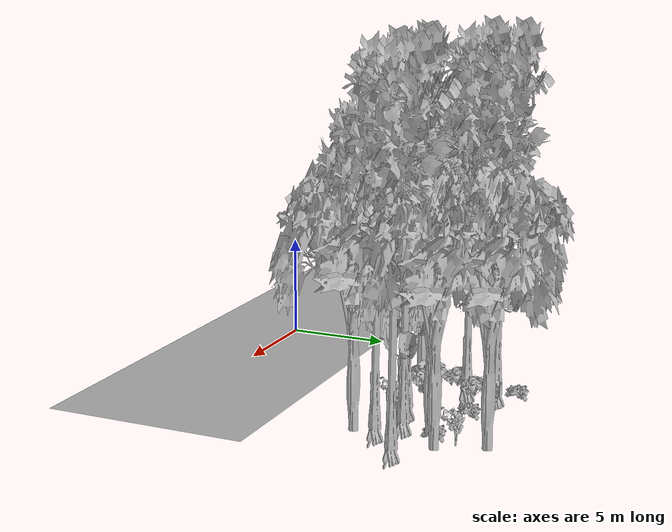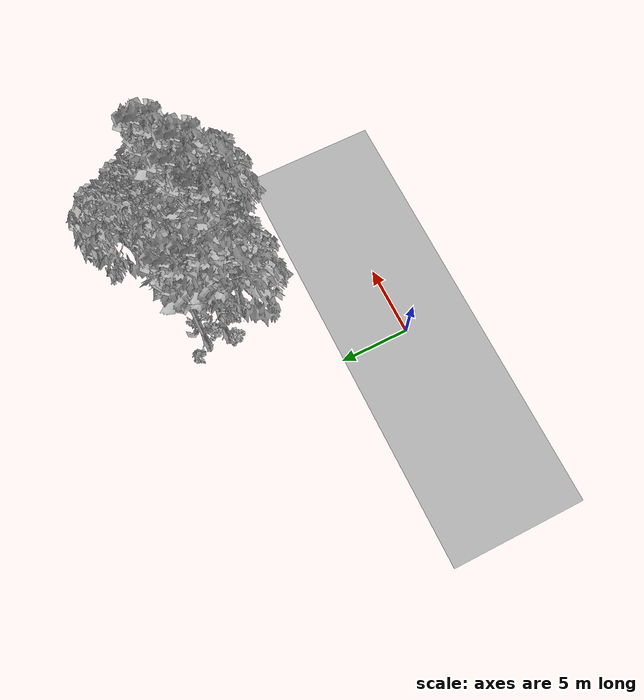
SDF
<sdf version="1.7">
 <world name="default">
  <model name="ground_plane">
   <static>1</static>
   <link name="link">
    <collision name="collision">
     <geometry><plane><normal>0 0 1</normal><size>100 100</size></plane></geometry>
     <surface><contact><ode><min_depth>0.01</min_depth><max_vel>0</max_vel></ode></contact></surface>
    </collision>
    <visual name="grass">
     <cast_shadows>0</cast_shadows>
     <geometry>
      <mesh>
       <scale>0.5814285714285714 0.18142857142857144 0.1</scale>
       <uri>file://grass_plane/meshes/grass_plane.dae</uri>
      </mesh>
     </geometry>
    </visual>
   </link>
  </model>
  <model name="Tree 8">
   <static>1</static>
   <pose>12.07316993260789 14.701660111387213 0 1.57079 -0 0</pose>
   <link name="link">
    <collision name="collision">
     <geometry><mesh><scale>3.5 5 3.5</scale><uri>model://tree_2/meshes/tree_2.obj</uri></mesh></geometry>
    </collision>
    <visual name="visual">
     <geometry><mesh><scale>3.5 5 3.5</scale><uri>model://tree_2/meshes/tree_2.obj</uri></mesh></geometry>
    </visual>
   </link>
  </model>
  <model name="Tree 24">
   <static>1</static>
   <pose>13.769064638838955 11.019449261312328 0 1.57079 -0 0</pose>
   <link name="link">
    <collision name="collision">
     <geometry><mesh><scale>3.5 5 3.5</scale><uri>model://tree_9/meshes/tree_9.obj</uri></mesh></geometry>
    </collision>
    <visual name="visual">
     <geometry><mesh><scale>3.5 5 3.5</scale><uri>model://tree_9/meshes/tree_9.obj</uri></mesh></geometry>
    </visual>
   </link>
  </model>
  <model name="Tree 78">
   <static>1</static>
   <pose>11.82530700708476 9.479976809722505 0 1.57079 -0 0</pose>
   <link name="link">
    <collision name="collision">
     <geometry><mesh><scale>3.5 5 3.5</scale><uri>model://tree_9/meshes/tree_9.obj</uri></mesh></geometry>
    </collision>
    <visual name="visual">
     <geometry><mesh><scale>3.5 5 3.5</scale><uri>model://tree_9/meshes/tree_9.obj</uri></mesh></geometry>
    </visual>
   </link>
  </model>
  <model name="Tree 181">
   <static>1</static>
   <pose>9.187643429530972 9.722921280876772 0 1.57079 -0 0</pose>
   <link name="link">
    <collision name="collision">
     <geometry><mesh><scale>3.5 5 3.5</scale><uri>model://tree_9/meshes/tree_9.obj</uri></mesh></geometry>
    </collision>
    <visual name="visual">
     <geometry><mesh><scale>3.5 5 3.5</scale><uri>model://tree_9/meshes/tree_9.obj</uri></mesh></geometry>
    </visual>
   </link>
  </model>
  <model name="Tree 211">
   <static>1</static>
   <pose>8.75540026182125 9.78323180119623 0 1.57079 -0 0</pose>
   <link name="link">
    <collision name="collision">
     <geometry><mesh><scale>3.5 5 3.5</scale><uri>model://tree_9/meshes/tree_9.obj</uri></mesh></geometry>
    </collision>
    <visual name="visual">
     <geometry><mesh><scale>3.5 5 3.5</scale><uri>model://tree_9/meshes/tree_9.obj</uri></mesh></geometry>
    </visual>
   </link>
  </model>
  <model name="Tree 242">
   <static>1</static>
   <pose>10.565771219315032 10.314334695126519 0 1.57079 -0 0</pose>
   <link name="link">
    <collision name="collision">
     <geometry><mesh><scale>3.5 5 3.5</scale><uri>model://tree_9/meshes/tree_9.obj</uri></mesh></geometry>
    </collision>
    <visual name="visual">
     <geometry><mesh><scale>3.5 5 3.5</scale><uri>model://tree_9/meshes/tree_9.obj</uri></mesh></geometry>
    </visual>
   </link>
  </model>
  <model name="Tree 262">
   <static>1</static>
   <pose>12.344941844912 8.703703186947735 0 1.57079 -0 0</pose>
   <link name="link">
    <collision name="collision">
     <geometry><mesh><scale>3.5 5 3.5</scale><uri>model://tree_2/meshes/tree_2.obj</uri></mesh></geometry>
    </collision>
    <visual name="visual">
     <geometry><mesh><scale>3.5 5 3.5</scale><uri>model://tree_2/meshes/tree_2.obj</uri></mesh></geometry>
    </visual>
   </link>
  </model>
  <model name="Tree 383">
   <static>1</static>
   <pose>6.305407458106657 9.669720391276591 0 1.57079 -0 0</pose>
   <link name="link">
    <collision name="collision">
     <geometry><mesh><scale>3.5 5 3.5</scale><uri>model://tree_2/meshes/tree_2.obj</uri></mesh></geometry>
    </collision>
    <visual name="visual">
     <geometry><mesh><scale>3.5 5 3.5</scale><uri>model://tree_2/meshes/tree_2.obj</uri></mesh></geometry>
    </visual>
   </link>
  </model>
  <model name="Tree 387">
   <static>1</static>
   <pose>12.965246348167248 12.648405683649976 0 1.57079 -0 0</pose>
   <link name="link">
    <collision name="collision">
     <geometry><mesh><scale>3.5 5 3.5</scale><uri>model://tree_2/meshes/tree_2.obj</uri></mesh></geometry>
    </collision>
    <visual name="visual">
     <geometry><mesh><scale>3.5 5 3.5</scale><uri>model://tree_2/meshes/tree_2.obj</uri></mesh></geometry>
    </visual>
   </link>
  </model>
  <model name="Tree 401">
   <static>1</static>
   <pose>5.310335073579665 12.920061202084014 0 1.57079 -0 0</pose>
   <link name="link">
    <collision name="collision">
     <geometry><mesh><scale>3.5 5 3.5</scale><uri>model://tree_9/meshes/tree_9.obj</uri></mesh></geometry>
    </collision>
    <visual name="visual">
     <geometry><mesh><scale>3.5 5 3.5</scale><uri>model://tree_9/meshes/tree_9.obj</uri></mesh></geometry>
    </visual>
   </link>
  </model>
  <model name="Tree 409">
   <static>1</static>
   <pose>11.504295103351424 11.936262495851231 0 1.57079 -0 0</pose>
   <link name="link">
    <collision name="collision">
     <geometry><mesh><scale>3.5 5 3.5</scale><uri>model://tree_2/meshes/tree_2.obj</uri></mesh></geometry>
    </collision>
    <visual name="visual">
     <geometry><mesh><scale>3.5 5 3.5</scale><uri>model://tree_2/meshes/tree_2.obj</uri></mesh></geometry>
    </visual>
   </link>
  </model>
  <model name="Tree 436">
   <static>1</static>
   <pose>5.240879766313746 11.445188822906658 0 1.57079 -0 0</pose>
   <link name="link">
    <collision name="collision">
     <geometry><mesh><scale>3.5 5 3.5</scale><uri>model://tree_9/meshes/tree_9.obj</uri></mesh></geometry>
    </collision>
    <visual name="visual">
     <geometry><mesh><scale>3.5 5 3.5</scale><uri>model://tree_9/meshes/tree_9.obj</uri></mesh></geometry>
    </visual>
   </link>
  </model>
  <model name="Bush 56">
   <static>1</static>
   <pose>6.866988326575722 13.094654866556471 0 1.57079 -0 0</pose>
   <link name="link">
    <collision name="collision">
     <geometry><mesh><scale>2 2 2</scale><uri>model://bush_4/meshes/bush_4.obj</uri></mesh></geometry>
     <surface><contact><collide_without_contact>false</collide_without_contact></contact></surface>
    </collision>
    <visual name="visual">
     <geometry><mesh><scale>2 2 2</scale><uri>model://bush_4/meshes/bush_4.obj</uri></mesh></geometry>
    </visual>
   </link>
  </model>
  <model name="Bush 62">
   <static>1</static>
   <pose>11.28751649200138 12.044852530638043 0 1.57079 -0 0</pose>
   <link name="link">
    <collision name="collision">
     <geometry><mesh><scale>2 2 2</scale><uri>model://bush_2/meshes/bush_2.obj</uri></mesh></geometry>
     <surface><contact><collide_without_contact>false</collide_without_contact></contact></surface>
    </collision>
    <visual name="visual">
     <geometry><mesh><scale>2 2 2</scale><uri>model://bush_2/meshes/bush_2.obj</uri></mesh></geometry>
    </visual>
   </link>
  </model>
  <model name="Bush 95">
   <static>1</static>
   <pose>6.4202256038760765 9.877119476552728 0 1.57079 -0 0</pose>
   <link name="link">
    <collision name="collision">
     <geometry><mesh><scale>2 2 2</scale><uri>model://bush_1/meshes/bush_1.obj</uri></mesh></geometry>
     <surface><contact><collide_without_contact>false</collide_without_contact></contact></surface>
    </collision>
    <visual name="visual">
     <geometry><mesh><scale>2 2 2</scale><uri>model://bush_1/meshes/bush_1.obj</uri></mesh></geometry>
    </visual>
   </link>
  </model>
  <model name="Bush 150">
   <static>1</static>
   <pose>9.690176936856211 9.550951409706066 0 1.57079 -0 0</pose>
   <link name="link">
    <collision name="collision">
     <geometry><mesh><scale>2 2 2</scale><uri>model://bush_5/meshes/bush_5.obj</uri></mesh></geometry>
     <surface><contact><collide_without_contact>false</collide_without_contact></contact></surface>
    </collision>
    <visual name="visual">
     <geometry><mesh><scale>2 2 2</scale><uri>model://bush_5/meshes/bush_5.obj</uri></mesh></geometry>
    </visual>
   </link>
  </model>
  <model name="Bush 170">
   <static>1</static>
   <pose>6.674504584728375 9.873927490224183 0 1.57079 -0 0</pose>
   <link name="link">
    <collision name="collision">
     <geometry><mesh><scale>2 2 2</scale><uri>model://bush_1/meshes/bush_1.obj</uri></mesh></geometry>
     <surface><contact><collide_without_contact>false</collide_without_contact></contact></surface>
    </collision>
    <visual name="visual">
     <geometry><mesh><scale>2 2 2</scale><uri>model://bush_1/meshes/bush_1.obj</uri></mesh></geometry>
    </visual>
   </link>
  </model>
  <model name="Bush 233">
   <static>1</static>
   <pose>4.916862759334549 10.929031012800927 0 1.57079 -0 0</pose>
   <link name="link">
    <collision name="collision">
     <geometry><mesh><scale>2 2 2</scale><uri>model://bush_3/meshes/bush_3.obj</uri></mesh></geometry>
     <surface><contact><collide_without_contact>false</collide_without_contact></contact></surface>
    </collision>
    <visual name="visual">
     <geometry><mesh><scale>2 2 2</scale><uri>model://bush_3/meshes/bush_3.obj</uri></mesh></geometry>
    </visual>
   </link>
  </model>
  <model name="Bush 245">
   <static>1</static>
   <pose>4.748333040049694 13.783936641689209 0 1.57079 -0 0</pose>
   <link name="link">
    <collision name="collision">
     <geometry><mesh><scale>2 2 2</scale><uri>model://bush_2/meshes/bush_2.obj</uri></mesh></geometry>
     <surface><contact><collide_without_contact>false</collide_without_contact></contact></surface>
    </collision>
    <visual name="visual">
     <geometry><mesh><scale>2 2 2</scale><uri>model://bush_2/meshes/bush_2.obj</uri></mesh></geometry>
    </visual>
   </link>
  </model>
  <model name="Bush 267">
   <static>1</static>
   <pose>8.064386772730494 12.536646669112216 0 1.57079 -0 0</pose>
   <link name="link">
    <collision name="collision">
     <geometry><mesh><scale>2 2 2</scale><uri>model://bush_2/meshes/bush_2.obj</uri></mesh></geometry>
     <surface><contact><collide_without_contact>false</collide_without_contact></contact></surface>
    </collision>
    <visual name="visual">
     <geometry><mesh><scale>2 2 2</scale><uri>model://bush_2/meshes/bush_2.obj</uri></mesh></geometry>
    </visual>
   </link>
  </model>
  <model name="Bush 272">
   <static>1</static>
   <pose>12.281959285416015 13.371985503781634 0 1.57079 -0 0</pose>
   <link name="link">
    <collision name="collision">
     <geometry><mesh><scale>2 2 2</scale><uri>model://bush_5/meshes/bush_5.obj</uri></mesh></geometry>
     <surface><contact><collide_without_contact>false</collide_without_contact></contact></surface>
    </collision>
    <visual name="visual">
     <geometry><mesh><scale>2 2 2</scale><uri>model://bush_5/meshes/bush_5.obj</uri></mesh></geometry>
    </visual>
   </link>
  </model>
  <model name="Bush 318">
   <static>1</static>
   <pose>5.928170780325409 12.08188464987364 0 1.57079 -0 0</pose>
   <link name="link">
    <collision name="collision">
     <geometry><mesh><scale>2 2 2</scale><uri>model://bush_3/meshes/bush_3.obj</uri></mesh></geometry>
     <surface><contact><collide_without_contact>false</collide_without_contact></contact></surface>
    </collision>
    <visual name="visual">
     <geometry><mesh><scale>2 2 2</scale><uri>model://bush_3/meshes/bush_3.obj</uri></mesh></geometry>
    </visual>
   </link>
  </model>
 </world>
</sdf>
